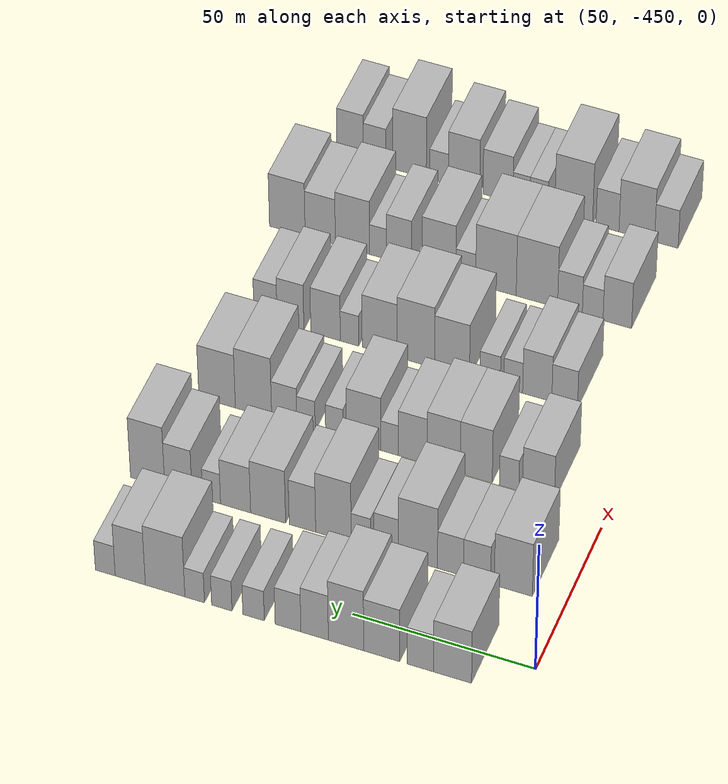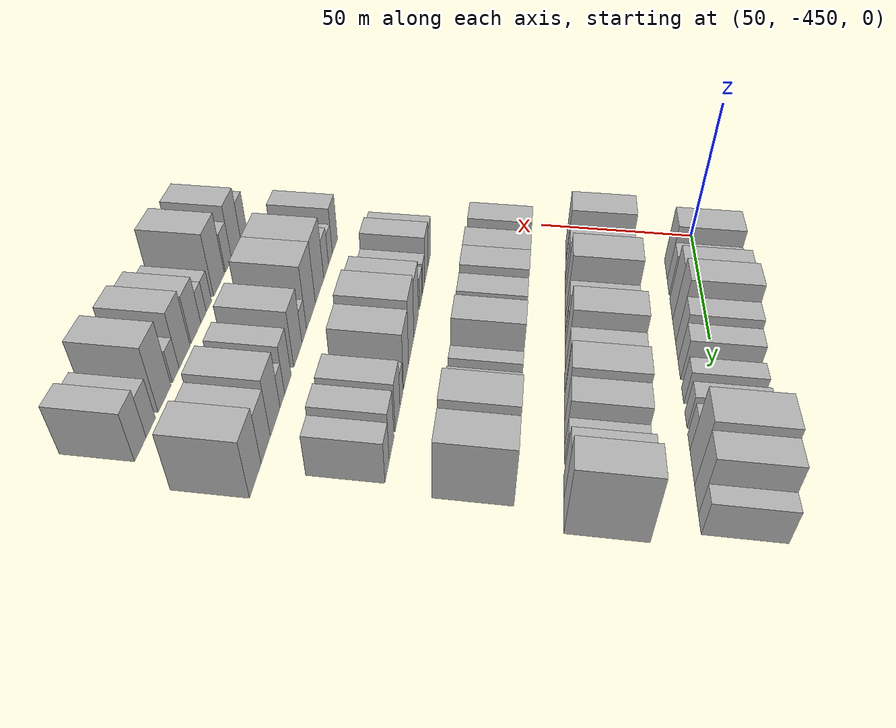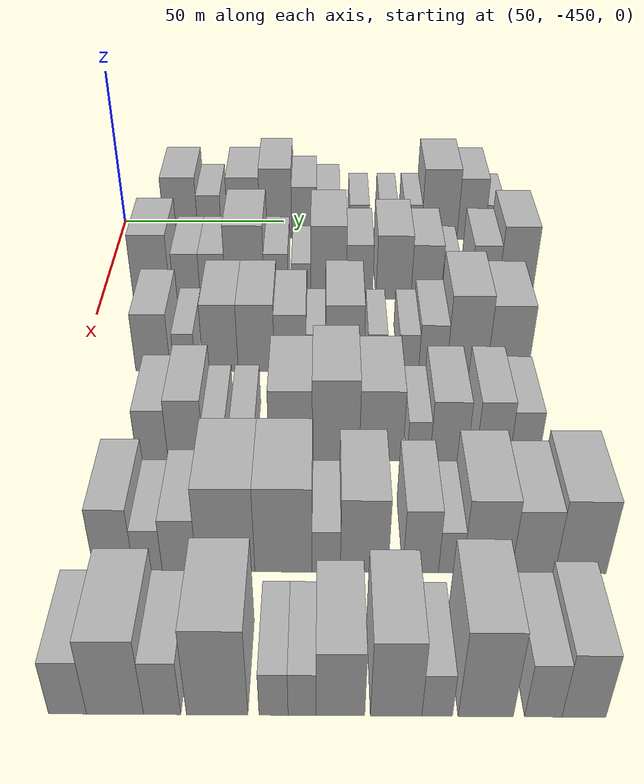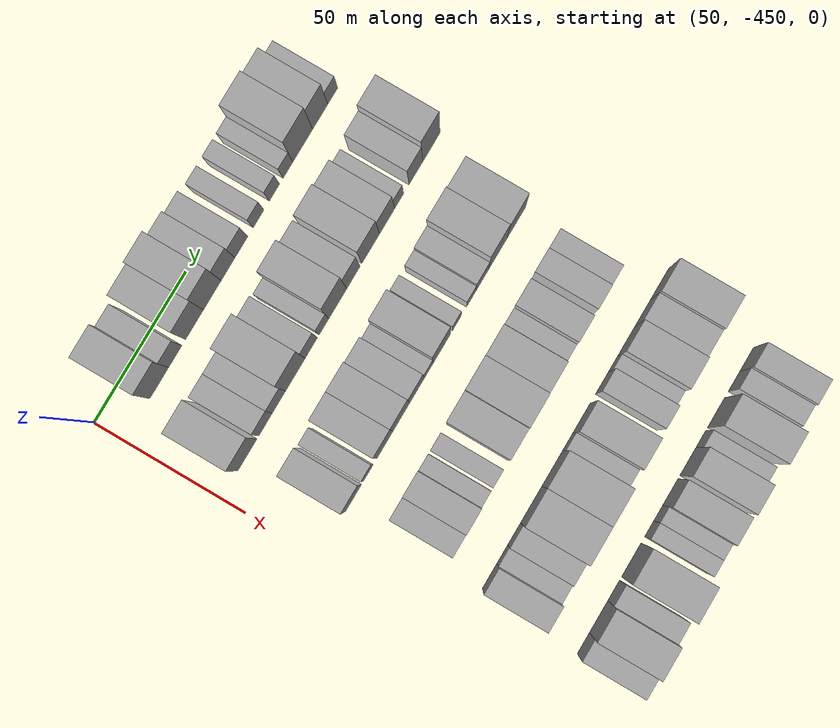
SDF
<sdf version="1.6">
 <world name="default">
  <model name="building_15">
   <static>1</static>
   <pose>50.0000 -431.0234 0 0.000000 0.000000 0.000000</pose>
   <link name="link">
    <pose>0 0 10.50 0 0 0</pose>
    <collision name="collision"><geometry><box><size>20.0000 10.3044 21.0000</size></box></geometry></collision>
    <visual name="visual">
     <cast_shadows>0</cast_shadows>
     <geometry><box><size>20.0000 10.3044 21.0000</size></box></geometry>
     <material>
      <script>
       <uri>model://HANNAS_wall/materials/scripts</uri>
       <uri>model://HANNAS_wall/materials/textures</uri>
       <name>vrc/HANNAS_wall</name>
      </script>
     </material>
    </visual>
   </link>
  </model>
  <model name="building_16">
   <static>1</static>
   <pose>50.0000 -422.2763 0 0.000000 0.000000 0.000000</pose>
   <link name="link">
    <pose>0 0 7.50 0 0 0</pose>
    <collision name="collision"><geometry><box><size>20.0000 7.1896 15.0000</size></box></geometry></collision>
    <visual name="visual">
     <cast_shadows>0</cast_shadows>
     <geometry><box><size>20.0000 7.1896 15.0000</size></box></geometry>
     <material>
      <script>
       <uri>model://HANNAS_wall/materials/scripts</uri>
       <uri>model://HANNAS_wall/materials/textures</uri>
       <name>vrc/HANNAS_wall</name>
      </script>
     </material>
    </visual>
   </link>
  </model>
  <model name="building_17">
   <static>1</static>
   <pose>50.0000 -411.7645 0 0.000000 0.000000 0.000000</pose>
   <link name="link">
    <pose>0 0 10.50 0 0 0</pose>
    <collision name="collision"><geometry><box><size>20.0000 9.8341 21.0000</size></box></geometry></collision>
    <visual name="visual">
     <cast_shadows>0</cast_shadows>
     <geometry><box><size>20.0000 9.8341 21.0000</size></box></geometry>
     <material>
      <script>
       <uri>model://HANNAS_wall/materials/scripts</uri>
       <uri>model://HANNAS_wall/materials/textures</uri>
       <name>vrc/HANNAS_wall</name>
      </script>
     </material>
    </visual>
   </link>
  </model>
  <model name="building_18">
   <static>1</static>
   <pose>50.0000 -401.9997 0 0.000000 0.000000 0.000000</pose>
   <link name="link">
    <pose>0 0 12.00 0 0 0</pose>
    <collision name="collision"><geometry><box><size>20.0000 9.6955 24.0000</size></box></geometry></collision>
    <visual name="visual">
     <cast_shadows>0</cast_shadows>
     <geometry><box><size>20.0000 9.6955 24.0000</size></box></geometry>
     <material>
      <script>
       <uri>model://HANNAS_wall/materials/scripts</uri>
       <uri>model://HANNAS_wall/materials/textures</uri>
       <name>vrc/HANNAS_wall</name>
      </script>
     </material>
    </visual>
   </link>
  </model>
  <model name="building_19">
   <static>1</static>
   <pose>50.0000 -393.3858 0 0.000000 0.000000 0.000000</pose>
   <link name="link">
    <pose>0 0 9.00 0 0 0</pose>
    <collision name="collision"><geometry><box><size>20.0000 7.5322 18.0000</size></box></geometry></collision>
    <visual name="visual">
     <cast_shadows>0</cast_shadows>
     <geometry><box><size>20.0000 7.5322 18.0000</size></box></geometry>
     <material>
      <script>
       <uri>model://HANNAS_wall/materials/scripts</uri>
       <uri>model://HANNAS_wall/materials/textures</uri>
       <name>vrc/HANNAS_wall</name>
      </script>
     </material>
    </visual>
   </link>
  </model>
  <model name="building_20">
   <static>1</static>
   <pose>50.0000 -386.0687 0 0.000000 0.000000 0.000000</pose>
   <link name="link">
    <pose>0 0 7.50 0 0 0</pose>
    <collision name="collision"><geometry><box><size>20.0000 7.1021 15.0000</size></box></geometry></collision>
    <visual name="visual">
     <cast_shadows>0</cast_shadows>
     <geometry><box><size>20.0000 7.1021 15.0000</size></box></geometry>
     <material>
      <script>
       <uri>model://HANNAS_wall/materials/scripts</uri>
       <uri>model://HANNAS_wall/materials/textures</uri>
       <name>vrc/HANNAS_wall</name>
      </script>
     </material>
    </visual>
   </link>
  </model>
  <model name="building_21">
   <static>1</static>
   <pose>50.0000 -376.5502 0 0.000000 0.000000 0.000000</pose>
   <link name="link">
    <pose>0 0 6.00 0 0 0</pose>
    <collision name="collision"><geometry><box><size>20.0000 5.9349 12.0000</size></box></geometry></collision>
    <visual name="visual">
     <cast_shadows>0</cast_shadows>
     <geometry><box><size>20.0000 5.9349 12.0000</size></box></geometry>
     <material>
      <script>
       <uri>model://HANNAS_wall/materials/scripts</uri>
       <uri>model://HANNAS_wall/materials/textures</uri>
       <name>vrc/HANNAS_wall</name>
      </script>
     </material>
    </visual>
   </link>
  </model>
  <model name="building_22">
   <static>1</static>
   <pose>50.0000 -367.7630 0 0.000000 0.000000 0.000000</pose>
   <link name="link">
    <pose>0 0 6.00 0 0 0</pose>
    <collision name="collision"><geometry><box><size>20.0000 5.6394 12.0000</size></box></geometry></collision>
    <visual name="visual">
     <cast_shadows>0</cast_shadows>
     <geometry><box><size>20.0000 5.6394 12.0000</size></box></geometry>
     <material>
      <script>
       <uri>model://HANNAS_wall/materials/scripts</uri>
       <uri>model://HANNAS_wall/materials/textures</uri>
       <name>vrc/HANNAS_wall</name>
      </script>
     </material>
    </visual>
   </link>
  </model>
  <model name="building_23">
   <static>1</static>
   <pose>50.0000 -360.2245 0 0.000000 0.000000 0.000000</pose>
   <link name="link">
    <pose>0 0 6.00 0 0 0</pose>
    <collision name="collision"><geometry><box><size>20.0000 5.4376 12.0000</size></box></geometry></collision>
    <visual name="visual">
     <cast_shadows>0</cast_shadows>
     <geometry><box><size>20.0000 5.4376 12.0000</size></box></geometry>
     <material>
      <script>
       <uri>model://HANNAS_wall/materials/scripts</uri>
       <uri>model://HANNAS_wall/materials/textures</uri>
       <name>vrc/HANNAS_wall</name>
      </script>
     </material>
    </visual>
   </link>
  </model>
  <model name="building_24">
   <static>1</static>
   <pose>50.0000 -352.0016 0 0.000000 0.000000 0.000000</pose>
   <link name="link">
    <pose>0 0 12.00 0 0 0</pose>
    <collision name="collision"><geometry><box><size>20.0000 11.0083 24.0000</size></box></geometry></collision>
    <visual name="visual">
     <cast_shadows>0</cast_shadows>
     <geometry><box><size>20.0000 11.0083 24.0000</size></box></geometry>
     <material>
      <script>
       <uri>model://HANNAS_wall/materials/scripts</uri>
       <uri>model://HANNAS_wall/materials/textures</uri>
       <name>vrc/HANNAS_wall</name>
      </script>
     </material>
    </visual>
   </link>
  </model>
  <model name="building_25">
   <static>1</static>
   <pose>50.0000 -342.2890 0 0.000000 0.000000 0.000000</pose>
   <link name="link">
    <pose>0 0 10.50 0 0 0</pose>
    <collision name="collision"><geometry><box><size>20.0000 8.4170 21.0000</size></box></geometry></collision>
    <visual name="visual">
     <cast_shadows>0</cast_shadows>
     <geometry><box><size>20.0000 8.4170 21.0000</size></box></geometry>
     <material>
      <script>
       <uri>model://HANNAS_wall/materials/scripts</uri>
       <uri>model://HANNAS_wall/materials/textures</uri>
       <name>vrc/HANNAS_wall</name>
      </script>
     </material>
    </visual>
   </link>
  </model>
  <model name="building_26">
   <static>1</static>
   <pose>50.0000 -335.2991 0 0.000000 0.000000 0.000000</pose>
   <link name="link">
    <pose>0 0 6.00 0 0 0</pose>
    <collision name="collision"><geometry><box><size>20.0000 5.5628 12.0000</size></box></geometry></collision>
    <visual name="visual">
     <cast_shadows>0</cast_shadows>
     <geometry><box><size>20.0000 5.5628 12.0000</size></box></geometry>
     <material>
      <script>
       <uri>model://HANNAS_wall/materials/scripts</uri>
       <uri>model://HANNAS_wall/materials/textures</uri>
       <name>vrc/HANNAS_wall</name>
      </script>
     </material>
    </visual>
   </link>
  </model>
  <model name="building_124">
   <static>1</static>
   <pose>82.0000 -435.7171 0 0.000000 0.000000 0.000000</pose>
   <link name="link">
    <pose>0 0 10.50 0 0 0</pose>
    <collision name="collision"><geometry><box><size>20.0000 10.4403 21.0000</size></box></geometry></collision>
    <visual name="visual">
     <cast_shadows>0</cast_shadows>
     <geometry><box><size>20.0000 10.4403 21.0000</size></box></geometry>
     <material>
      <script>
       <uri>model://HANNAS_wall/materials/scripts</uri>
       <uri>model://HANNAS_wall/materials/textures</uri>
       <name>vrc/HANNAS_wall</name>
      </script>
     </material>
    </visual>
   </link>
  </model>
  <model name="building_125">
   <static>1</static>
   <pose>82.0000 -425.7725 0 0.000000 0.000000 0.000000</pose>
   <link name="link">
    <pose>0 0 7.50 0 0 0</pose>
    <collision name="collision"><geometry><box><size>20.0000 7.4490 15.0000</size></box></geometry></collision>
    <visual name="visual">
     <cast_shadows>0</cast_shadows>
     <geometry><box><size>20.0000 7.4490 15.0000</size></box></geometry>
     <material>
      <script>
       <uri>model://HANNAS_wall/materials/scripts</uri>
       <uri>model://HANNAS_wall/materials/textures</uri>
       <name>vrc/HANNAS_wall</name>
      </script>
     </material>
    </visual>
   </link>
  </model>
  <model name="building_126">
   <static>1</static>
   <pose>82.0000 -418.4487 0 0.000000 0.000000 0.000000</pose>
   <link name="link">
    <pose>0 0 7.50 0 0 0</pose>
    <collision name="collision"><geometry><box><size>20.0000 7.1985 15.0000</size></box></geometry></collision>
    <visual name="visual">
     <cast_shadows>0</cast_shadows>
     <geometry><box><size>20.0000 7.1985 15.0000</size></box></geometry>
     <material>
      <script>
       <uri>model://HANNAS_wall/materials/scripts</uri>
       <uri>model://HANNAS_wall/materials/textures</uri>
       <name>vrc/HANNAS_wall</name>
      </script>
     </material>
    </visual>
   </link>
  </model>
  <model name="building_127">
   <static>1</static>
   <pose>82.0000 -409.4399 0 0.000000 0.000000 0.000000</pose>
   <link name="link">
    <pose>0 0 12.00 0 0 0</pose>
    <collision name="collision"><geometry><box><size>20.0000 10.8192 24.0000</size></box></geometry></collision>
    <visual name="visual">
     <cast_shadows>0</cast_shadows>
     <geometry><box><size>20.0000 10.8192 24.0000</size></box></geometry>
     <material>
      <script>
       <uri>model://HANNAS_wall/materials/scripts</uri>
       <uri>model://HANNAS_wall/materials/textures</uri>
       <name>vrc/HANNAS_wall</name>
      </script>
     </material>
    </visual>
   </link>
  </model>
  <model name="building_128">
   <static>1</static>
   <pose>82.0000 -400.6678 0 0.000000 0.000000 0.000000</pose>
   <link name="link">
    <pose>0 0 7.50 0 0 0</pose>
    <collision name="collision"><geometry><box><size>20.0000 6.7251 15.0000</size></box></geometry></collision>
    <visual name="visual">
     <cast_shadows>0</cast_shadows>
     <geometry><box><size>20.0000 6.7251 15.0000</size></box></geometry>
     <material>
      <script>
       <uri>model://HANNAS_wall/materials/scripts</uri>
       <uri>model://HANNAS_wall/materials/textures</uri>
       <name>vrc/HANNAS_wall</name>
      </script>
     </material>
    </visual>
   </link>
  </model>
  <model name="building_129">
   <static>1</static>
   <pose>82.0000 -393.6276 0 0.000000 0.000000 0.000000</pose>
   <link name="link">
    <pose>0 0 6.00 0 0 0</pose>
    <collision name="collision"><geometry><box><size>20.0000 5.3552 12.0000</size></box></geometry></collision>
    <visual name="visual">
     <cast_shadows>0</cast_shadows>
     <geometry><box><size>20.0000 5.3552 12.0000</size></box></geometry>
     <material>
      <script>
       <uri>model://HANNAS_wall/materials/scripts</uri>
       <uri>model://HANNAS_wall/materials/textures</uri>
       <name>vrc/HANNAS_wall</name>
      </script>
     </material>
    </visual>
   </link>
  </model>
  <model name="building_130">
   <static>1</static>
   <pose>82.0000 -385.9946 0 0.000000 0.000000 0.000000</pose>
   <link name="link">
    <pose>0 0 12.00 0 0 0</pose>
    <collision name="collision"><geometry><box><size>20.0000 9.9109 24.0000</size></box></geometry></collision>
    <visual name="visual">
     <cast_shadows>0</cast_shadows>
     <geometry><box><size>20.0000 9.9109 24.0000</size></box></geometry>
     <material>
      <script>
       <uri>model://HANNAS_wall/materials/scripts</uri>
       <uri>model://HANNAS_wall/materials/textures</uri>
       <name>vrc/HANNAS_wall</name>
      </script>
     </material>
    </visual>
   </link>
  </model>
  <model name="building_131">
   <static>1</static>
   <pose>82.0000 -377.3391 0 0.000000 0.000000 0.000000</pose>
   <link name="link">
    <pose>0 0 9.00 0 0 0</pose>
    <collision name="collision"><geometry><box><size>20.0000 7.4000 18.0000</size></box></geometry></collision>
    <visual name="visual">
     <cast_shadows>0</cast_shadows>
     <geometry><box><size>20.0000 7.4000 18.0000</size></box></geometry>
     <material>
      <script>
       <uri>model://HANNAS_wall/materials/scripts</uri>
       <uri>model://HANNAS_wall/materials/textures</uri>
       <name>vrc/HANNAS_wall</name>
      </script>
     </material>
    </visual>
   </link>
  </model>
  <model name="building_132">
   <static>1</static>
   <pose>82.0000 -367.7302 0 0.000000 0.000000 0.000000</pose>
   <link name="link">
    <pose>0 0 10.50 0 0 0</pose>
    <collision name="collision"><geometry><box><size>20.0000 9.8177 21.0000</size></box></geometry></collision>
    <visual name="visual">
     <cast_shadows>0</cast_shadows>
     <geometry><box><size>20.0000 9.8177 21.0000</size></box></geometry>
     <material>
      <script>
       <uri>model://HANNAS_wall/materials/scripts</uri>
       <uri>model://HANNAS_wall/materials/textures</uri>
       <name>vrc/HANNAS_wall</name>
      </script>
     </material>
    </visual>
   </link>
  </model>
  <model name="building_133">
   <static>1</static>
   <pose>82.0000 -358.5828 0 0.000000 0.000000 0.000000</pose>
   <link name="link">
    <pose>0 0 9.00 0 0 0</pose>
    <collision name="collision"><geometry><box><size>20.0000 8.4772 18.0000</size></box></geometry></collision>
    <visual name="visual">
     <cast_shadows>0</cast_shadows>
     <geometry><box><size>20.0000 8.4772 18.0000</size></box></geometry>
     <material>
      <script>
       <uri>model://HANNAS_wall/materials/scripts</uri>
       <uri>model://HANNAS_wall/materials/textures</uri>
       <name>vrc/HANNAS_wall</name>
      </script>
     </material>
    </visual>
   </link>
  </model>
  <model name="building_134">
   <static>1</static>
   <pose>82.0000 -351.8212 0 0.000000 0.000000 0.000000</pose>
   <link name="link">
    <pose>0 0 6.00 0 0 0</pose>
    <collision name="collision"><geometry><box><size>20.0000 5.0460 12.0000</size></box></geometry></collision>
    <visual name="visual">
     <cast_shadows>0</cast_shadows>
     <geometry><box><size>20.0000 5.0460 12.0000</size></box></geometry>
     <material>
      <script>
       <uri>model://HANNAS_wall/materials/scripts</uri>
       <uri>model://HANNAS_wall/materials/textures</uri>
       <name>vrc/HANNAS_wall</name>
      </script>
     </material>
    </visual>
   </link>
  </model>
  <model name="building_135">
   <static>1</static>
   <pose>82.0000 -342.4400 0 0.000000 0.000000 0.000000</pose>
   <link name="link">
    <pose>0 0 9.00 0 0 0</pose>
    <collision name="collision"><geometry><box><size>20.0000 7.7163 18.0000</size></box></geometry></collision>
    <visual name="visual">
     <cast_shadows>0</cast_shadows>
     <geometry><box><size>20.0000 7.7163 18.0000</size></box></geometry>
     <material>
      <script>
       <uri>model://HANNAS_wall/materials/scripts</uri>
       <uri>model://HANNAS_wall/materials/textures</uri>
       <name>vrc/HANNAS_wall</name>
      </script>
     </material>
    </visual>
   </link>
  </model>
  <model name="building_136">
   <static>1</static>
   <pose>82.0000 -333.7368 0 0.000000 0.000000 0.000000</pose>
   <link name="link">
    <pose>0 0 12.00 0 0 0</pose>
    <collision name="collision"><geometry><box><size>20.0000 9.6902 24.0000</size></box></geometry></collision>
    <visual name="visual">
     <cast_shadows>0</cast_shadows>
     <geometry><box><size>20.0000 9.6902 24.0000</size></box></geometry>
     <material>
      <script>
       <uri>model://HANNAS_wall/materials/scripts</uri>
       <uri>model://HANNAS_wall/materials/textures</uri>
       <name>vrc/HANNAS_wall</name>
      </script>
     </material>
    </visual>
   </link>
  </model>
  <model name="building_251">
   <static>1</static>
   <pose>114.0000 -430.9544 0 0.000000 0.000000 0.000000</pose>
   <link name="link">
    <pose>0 0 9.00 0 0 0</pose>
    <collision name="collision"><geometry><box><size>20.0000 8.8700 18.0000</size></box></geometry></collision>
    <visual name="visual">
     <cast_shadows>0</cast_shadows>
     <geometry><box><size>20.0000 8.8700 18.0000</size></box></geometry>
     <material>
      <script>
       <uri>model://HANNAS_wall/materials/scripts</uri>
       <uri>model://HANNAS_wall/materials/textures</uri>
       <name>vrc/HANNAS_wall</name>
      </script>
     </material>
    </visual>
   </link>
  </model>
  <model name="building_252">
   <static>1</static>
   <pose>114.0000 -422.8022 0 0.000000 0.000000 0.000000</pose>
   <link name="link">
    <pose>0 0 6.00 0 0 0</pose>
    <collision name="collision"><geometry><box><size>20.0000 5.4343 12.0000</size></box></geometry></collision>
    <visual name="visual">
     <cast_shadows>0</cast_shadows>
     <geometry><box><size>20.0000 5.4343 12.0000</size></box></geometry>
     <material>
      <script>
       <uri>model://HANNAS_wall/materials/scripts</uri>
       <uri>model://HANNAS_wall/materials/textures</uri>
       <name>vrc/HANNAS_wall</name>
      </script>
     </material>
    </visual>
   </link>
  </model>
  <model name="building_253">
   <static>1</static>
   <pose>114.0000 -413.6154 0 0.000000 0.000000 0.000000</pose>
   <link name="link">
    <pose>0 0 10.50 0 0 0</pose>
    <collision name="collision"><geometry><box><size>20.0000 8.9394 21.0000</size></box></geometry></collision>
    <visual name="visual">
     <cast_shadows>0</cast_shadows>
     <geometry><box><size>20.0000 8.9394 21.0000</size></box></geometry>
     <material>
      <script>
       <uri>model://HANNAS_wall/materials/scripts</uri>
       <uri>model://HANNAS_wall/materials/textures</uri>
       <name>vrc/HANNAS_wall</name>
      </script>
     </material>
    </visual>
   </link>
  </model>
  <model name="building_254">
   <static>1</static>
   <pose>114.0000 -404.5164 0 0.000000 0.000000 0.000000</pose>
   <link name="link">
    <pose>0 0 10.50 0 0 0</pose>
    <collision name="collision"><geometry><box><size>20.0000 9.2585 21.0000</size></box></geometry></collision>
    <visual name="visual">
     <cast_shadows>0</cast_shadows>
     <geometry><box><size>20.0000 9.2585 21.0000</size></box></geometry>
     <material>
      <script>
       <uri>model://HANNAS_wall/materials/scripts</uri>
       <uri>model://HANNAS_wall/materials/textures</uri>
       <name>vrc/HANNAS_wall</name>
      </script>
     </material>
    </visual>
   </link>
  </model>
  <model name="building_255">
   <static>1</static>
   <pose>114.0000 -395.8419 0 0.000000 0.000000 0.000000</pose>
   <link name="link">
    <pose>0 0 9.00 0 0 0</pose>
    <collision name="collision"><geometry><box><size>20.0000 8.0905 18.0000</size></box></geometry></collision>
    <visual name="visual">
     <cast_shadows>0</cast_shadows>
     <geometry><box><size>20.0000 8.0905 18.0000</size></box></geometry>
     <material>
      <script>
       <uri>model://HANNAS_wall/materials/scripts</uri>
       <uri>model://HANNAS_wall/materials/textures</uri>
       <name>vrc/HANNAS_wall</name>
      </script>
     </material>
    </visual>
   </link>
  </model>
  <model name="building_256">
   <static>1</static>
   <pose>114.0000 -389.3204 0 0.000000 0.000000 0.000000</pose>
   <link name="link">
    <pose>0 0 6.00 0 0 0</pose>
    <collision name="collision"><geometry><box><size>20.0000 4.9526 12.0000</size></box></geometry></collision>
    <visual name="visual">
     <cast_shadows>0</cast_shadows>
     <geometry><box><size>20.0000 4.9526 12.0000</size></box></geometry>
     <material>
      <script>
       <uri>model://HANNAS_wall/materials/scripts</uri>
       <uri>model://HANNAS_wall/materials/textures</uri>
       <name>vrc/HANNAS_wall</name>
      </script>
     </material>
    </visual>
   </link>
  </model>
  <model name="building_257">
   <static>1</static>
   <pose>114.0000 -382.0037 0 0.000000 0.000000 0.000000</pose>
   <link name="link">
    <pose>0 0 10.50 0 0 0</pose>
    <collision name="collision"><geometry><box><size>20.0000 9.6807 21.0000</size></box></geometry></collision>
    <visual name="visual">
     <cast_shadows>0</cast_shadows>
     <geometry><box><size>20.0000 9.6807 21.0000</size></box></geometry>
     <material>
      <script>
       <uri>model://HANNAS_wall/materials/scripts</uri>
       <uri>model://HANNAS_wall/materials/textures</uri>
       <name>vrc/HANNAS_wall</name>
      </script>
     </material>
    </visual>
   </link>
  </model>
  <model name="building_258">
   <static>1</static>
   <pose>114.0000 -373.7059 0 0.000000 0.000000 0.000000</pose>
   <link name="link">
    <pose>0 0 6.00 0 0 0</pose>
    <collision name="collision"><geometry><box><size>20.0000 4.9148 12.0000</size></box></geometry></collision>
    <visual name="visual">
     <cast_shadows>0</cast_shadows>
     <geometry><box><size>20.0000 4.9148 12.0000</size></box></geometry>
     <material>
      <script>
       <uri>model://HANNAS_wall/materials/scripts</uri>
       <uri>model://HANNAS_wall/materials/textures</uri>
       <name>vrc/HANNAS_wall</name>
      </script>
     </material>
    </visual>
   </link>
  </model>
  <model name="building_259">
   <static>1</static>
   <pose>114.0000 -365.6502 0 0.000000 0.000000 0.000000</pose>
   <link name="link">
    <pose>0 0 6.00 0 0 0</pose>
    <collision name="collision"><geometry><box><size>20.0000 5.1966 12.0000</size></box></geometry></collision>
    <visual name="visual">
     <cast_shadows>0</cast_shadows>
     <geometry><box><size>20.0000 5.1966 12.0000</size></box></geometry>
     <material>
      <script>
       <uri>model://HANNAS_wall/materials/scripts</uri>
       <uri>model://HANNAS_wall/materials/textures</uri>
       <name>vrc/HANNAS_wall</name>
      </script>
     </material>
    </visual>
   </link>
  </model>
  <model name="building_260">
   <static>1</static>
   <pose>114.0000 -359.4777 0 0.000000 0.000000 0.000000</pose>
   <link name="link">
    <pose>0 0 7.50 0 0 0</pose>
    <collision name="collision"><geometry><box><size>20.0000 7.1486 15.0000</size></box></geometry></collision>
    <visual name="visual">
     <cast_shadows>0</cast_shadows>
     <geometry><box><size>20.0000 7.1486 15.0000</size></box></geometry>
     <material>
      <script>
       <uri>model://HANNAS_wall/materials/scripts</uri>
       <uri>model://HANNAS_wall/materials/textures</uri>
       <name>vrc/HANNAS_wall</name>
      </script>
     </material>
    </visual>
   </link>
  </model>
  <model name="building_261">
   <static>1</static>
   <pose>114.0000 -350.7200 0 0.000000 0.000000 0.000000</pose>
   <link name="link">
    <pose>0 0 12.00 0 0 0</pose>
    <collision name="collision"><geometry><box><size>20.0000 10.3667 24.0000</size></box></geometry></collision>
    <visual name="visual">
     <cast_shadows>0</cast_shadows>
     <geometry><box><size>20.0000 10.3667 24.0000</size></box></geometry>
     <material>
      <script>
       <uri>model://HANNAS_wall/materials/scripts</uri>
       <uri>model://HANNAS_wall/materials/textures</uri>
       <name>vrc/HANNAS_wall</name>
      </script>
     </material>
    </visual>
   </link>
  </model>
  <model name="building_262">
   <static>1</static>
   <pose>114.0000 -340.3106 0 0.000000 0.000000 0.000000</pose>
   <link name="link">
    <pose>0 0 10.50 0 0 0</pose>
    <collision name="collision"><geometry><box><size>20.0000 10.4520 21.0000</size></box></geometry></collision>
    <visual name="visual">
     <cast_shadows>0</cast_shadows>
     <geometry><box><size>20.0000 10.4520 21.0000</size></box></geometry>
     <material>
      <script>
       <uri>model://HANNAS_wall/materials/scripts</uri>
       <uri>model://HANNAS_wall/materials/textures</uri>
       <name>vrc/HANNAS_wall</name>
      </script>
     </material>
    </visual>
   </link>
  </model>
  <model name="building_372">
   <static>1</static>
   <pose>146.0000 -426.7146 0 0.000000 0.000000 0.000000</pose>
   <link name="link">
    <pose>0 0 7.50 0 0 0</pose>
    <collision name="collision"><geometry><box><size>20.0000 7.2347 15.0000</size></box></geometry></collision>
    <visual name="visual">
     <cast_shadows>0</cast_shadows>
     <geometry><box><size>20.0000 7.2347 15.0000</size></box></geometry>
     <material>
      <script>
       <uri>model://HANNAS_wall/materials/scripts</uri>
       <uri>model://HANNAS_wall/materials/textures</uri>
       <name>vrc/HANNAS_wall</name>
      </script>
     </material>
    </visual>
   </link>
  </model>
  <model name="building_373">
   <static>1</static>
   <pose>146.0000 -418.9772 0 0.000000 0.000000 0.000000</pose>
   <link name="link">
    <pose>0 0 9.00 0 0 0</pose>
    <collision name="collision"><geometry><box><size>20.0000 8.2400 18.0000</size></box></geometry></collision>
    <visual name="visual">
     <cast_shadows>0</cast_shadows>
     <geometry><box><size>20.0000 8.2400 18.0000</size></box></geometry>
     <material>
      <script>
       <uri>model://HANNAS_wall/materials/scripts</uri>
       <uri>model://HANNAS_wall/materials/textures</uri>
       <name>vrc/HANNAS_wall</name>
      </script>
     </material>
    </visual>
   </link>
  </model>
  <model name="building_374">
   <static>1</static>
   <pose>146.0000 -412.1987 0 0.000000 0.000000 0.000000</pose>
   <link name="link">
    <pose>0 0 6.00 0 0 0</pose>
    <collision name="collision"><geometry><box><size>20.0000 5.3171 12.0000</size></box></geometry></collision>
    <visual name="visual">
     <cast_shadows>0</cast_shadows>
     <geometry><box><size>20.0000 5.3171 12.0000</size></box></geometry>
     <material>
      <script>
       <uri>model://HANNAS_wall/materials/scripts</uri>
       <uri>model://HANNAS_wall/materials/textures</uri>
       <name>vrc/HANNAS_wall</name>
      </script>
     </material>
    </visual>
   </link>
  </model>
  <model name="building_375">
   <static>1</static>
   <pose>146.0000 -405.6668 0 0.000000 0.000000 0.000000</pose>
   <link name="link">
    <pose>0 0 6.00 0 0 0</pose>
    <collision name="collision"><geometry><box><size>20.0000 5.7467 12.0000</size></box></geometry></collision>
    <visual name="visual">
     <cast_shadows>0</cast_shadows>
     <geometry><box><size>20.0000 5.7467 12.0000</size></box></geometry>
     <material>
      <script>
       <uri>model://HANNAS_wall/materials/scripts</uri>
       <uri>model://HANNAS_wall/materials/textures</uri>
       <name>vrc/HANNAS_wall</name>
      </script>
     </material>
    </visual>
   </link>
  </model>
  <model name="building_376">
   <static>1</static>
   <pose>146.0000 -394.8398 0 0.000000 0.000000 0.000000</pose>
   <link name="link">
    <pose>0 0 10.50 0 0 0</pose>
    <collision name="collision"><geometry><box><size>20.0000 9.9075 21.0000</size></box></geometry></collision>
    <visual name="visual">
     <cast_shadows>0</cast_shadows>
     <geometry><box><size>20.0000 9.9075 21.0000</size></box></geometry>
     <material>
      <script>
       <uri>model://HANNAS_wall/materials/scripts</uri>
       <uri>model://HANNAS_wall/materials/textures</uri>
       <name>vrc/HANNAS_wall</name>
      </script>
     </material>
    </visual>
   </link>
  </model>
  <model name="building_377">
   <static>1</static>
   <pose>146.0000 -384.5113 0 0.000000 0.000000 0.000000</pose>
   <link name="link">
    <pose>0 0 12.00 0 0 0</pose>
    <collision name="collision"><geometry><box><size>20.0000 10.7495 24.0000</size></box></geometry></collision>
    <visual name="visual">
     <cast_shadows>0</cast_shadows>
     <geometry><box><size>20.0000 10.7495 24.0000</size></box></geometry>
     <material>
      <script>
       <uri>model://HANNAS_wall/materials/scripts</uri>
       <uri>model://HANNAS_wall/materials/textures</uri>
       <name>vrc/HANNAS_wall</name>
      </script>
     </material>
    </visual>
   </link>
  </model>
  <model name="building_378">
   <static>1</static>
   <pose>146.0000 -374.1393 0 0.000000 0.000000 0.000000</pose>
   <link name="link">
    <pose>0 0 10.50 0 0 0</pose>
    <collision name="collision"><geometry><box><size>20.0000 9.9944 21.0000</size></box></geometry></collision>
    <visual name="visual">
     <cast_shadows>0</cast_shadows>
     <geometry><box><size>20.0000 9.9944 21.0000</size></box></geometry>
     <material>
      <script>
       <uri>model://HANNAS_wall/materials/scripts</uri>
       <uri>model://HANNAS_wall/materials/textures</uri>
       <name>vrc/HANNAS_wall</name>
      </script>
     </material>
    </visual>
   </link>
  </model>
  <model name="building_379">
   <static>1</static>
   <pose>146.0000 -365.5115 0 0.000000 0.000000 0.000000</pose>
   <link name="link">
    <pose>0 0 6.00 0 0 0</pose>
    <collision name="collision"><geometry><box><size>20.0000 5.2613 12.0000</size></box></geometry></collision>
    <visual name="visual">
     <cast_shadows>0</cast_shadows>
     <geometry><box><size>20.0000 5.2613 12.0000</size></box></geometry>
     <material>
      <script>
       <uri>model://HANNAS_wall/materials/scripts</uri>
       <uri>model://HANNAS_wall/materials/textures</uri>
       <name>vrc/HANNAS_wall</name>
      </script>
     </material>
    </visual>
   </link>
  </model>
  <model name="building_380">
   <static>1</static>
   <pose>146.0000 -358.6246 0 0.000000 0.000000 0.000000</pose>
   <link name="link">
    <pose>0 0 9.00 0 0 0</pose>
    <collision name="collision"><geometry><box><size>20.0000 8.5125 18.0000</size></box></geometry></collision>
    <visual name="visual">
     <cast_shadows>0</cast_shadows>
     <geometry><box><size>20.0000 8.5125 18.0000</size></box></geometry>
     <material>
      <script>
       <uri>model://HANNAS_wall/materials/scripts</uri>
       <uri>model://HANNAS_wall/materials/textures</uri>
       <name>vrc/HANNAS_wall</name>
      </script>
     </material>
    </visual>
   </link>
  </model>
  <model name="building_381">
   <static>1</static>
   <pose>146.0000 -348.5094 0 0.000000 0.000000 0.000000</pose>
   <link name="link">
    <pose>0 0 9.00 0 0 0</pose>
    <collision name="collision"><geometry><box><size>20.0000 7.7178 18.0000</size></box></geometry></collision>
    <visual name="visual">
     <cast_shadows>0</cast_shadows>
     <geometry><box><size>20.0000 7.7178 18.0000</size></box></geometry>
     <material>
      <script>
       <uri>model://HANNAS_wall/materials/scripts</uri>
       <uri>model://HANNAS_wall/materials/textures</uri>
       <name>vrc/HANNAS_wall</name>
      </script>
     </material>
    </visual>
   </link>
  </model>
  <model name="building_382">
   <static>1</static>
   <pose>146.0000 -341.2983 0 0.000000 0.000000 0.000000</pose>
   <link name="link">
    <pose>0 0 7.50 0 0 0</pose>
    <collision name="collision"><geometry><box><size>20.0000 6.7044 15.0000</size></box></geometry></collision>
    <visual name="visual">
     <cast_shadows>0</cast_shadows>
     <geometry><box><size>20.0000 6.7044 15.0000</size></box></geometry>
     <material>
      <script>
       <uri>model://HANNAS_wall/materials/scripts</uri>
       <uri>model://HANNAS_wall/materials/textures</uri>
       <name>vrc/HANNAS_wall</name>
      </script>
     </material>
    </visual>
   </link>
  </model>
  <model name="building_496">
   <static>1</static>
   <pose>178.0000 -430.2176 0 0.000000 0.000000 0.000000</pose>
   <link name="link">
    <pose>0 0 9.00 0 0 0</pose>
    <collision name="collision"><geometry><box><size>20.0000 8.1299 18.0000</size></box></geometry></collision>
    <visual name="visual">
     <cast_shadows>0</cast_shadows>
     <geometry><box><size>20.0000 8.1299 18.0000</size></box></geometry>
     <material>
      <script>
       <uri>model://HANNAS_wall/materials/scripts</uri>
       <uri>model://HANNAS_wall/materials/textures</uri>
       <name>vrc/HANNAS_wall</name>
      </script>
     </material>
    </visual>
   </link>
  </model>
  <model name="building_497">
   <static>1</static>
   <pose>178.0000 -423.1994 0 0.000000 0.000000 0.000000</pose>
   <link name="link">
    <pose>0 0 6.00 0 0 0</pose>
    <collision name="collision"><geometry><box><size>20.0000 5.9065 12.0000</size></box></geometry></collision>
    <visual name="visual">
     <cast_shadows>0</cast_shadows>
     <geometry><box><size>20.0000 5.9065 12.0000</size></box></geometry>
     <material>
      <script>
       <uri>model://HANNAS_wall/materials/scripts</uri>
       <uri>model://HANNAS_wall/materials/textures</uri>
       <name>vrc/HANNAS_wall</name>
      </script>
     </material>
    </visual>
   </link>
  </model>
  <model name="building_498">
   <static>1</static>
   <pose>178.0000 -416.7090 0 0.000000 0.000000 0.000000</pose>
   <link name="link">
    <pose>0 0 7.50 0 0 0</pose>
    <collision name="collision"><geometry><box><size>20.0000 7.0741 15.0000</size></box></geometry></collision>
    <visual name="visual">
     <cast_shadows>0</cast_shadows>
     <geometry><box><size>20.0000 7.0741 15.0000</size></box></geometry>
     <material>
      <script>
       <uri>model://HANNAS_wall/materials/scripts</uri>
       <uri>model://HANNAS_wall/materials/textures</uri>
       <name>vrc/HANNAS_wall</name>
      </script>
     </material>
    </visual>
   </link>
  </model>
  <model name="building_499">
   <static>1</static>
   <pose>178.0000 -407.2328 0 0.000000 0.000000 0.000000</pose>
   <link name="link">
    <pose>0 0 12.00 0 0 0</pose>
    <collision name="collision"><geometry><box><size>20.0000 11.8783 24.0000</size></box></geometry></collision>
    <visual name="visual">
     <cast_shadows>0</cast_shadows>
     <geometry><box><size>20.0000 11.8783 24.0000</size></box></geometry>
     <material>
      <script>
       <uri>model://HANNAS_wall/materials/scripts</uri>
       <uri>model://HANNAS_wall/materials/textures</uri>
       <name>vrc/HANNAS_wall</name>
      </script>
     </material>
    </visual>
   </link>
  </model>
  <model name="building_500">
   <static>1</static>
   <pose>178.0000 -395.4577 0 0.000000 0.000000 0.000000</pose>
   <link name="link">
    <pose>0 0 12.00 0 0 0</pose>
    <collision name="collision"><geometry><box><size>20.0000 11.6719 24.0000</size></box></geometry></collision>
    <visual name="visual">
     <cast_shadows>0</cast_shadows>
     <geometry><box><size>20.0000 11.6719 24.0000</size></box></geometry>
     <material>
      <script>
       <uri>model://HANNAS_wall/materials/scripts</uri>
       <uri>model://HANNAS_wall/materials/textures</uri>
       <name>vrc/HANNAS_wall</name>
      </script>
     </material>
    </visual>
   </link>
  </model>
  <model name="building_501">
   <static>1</static>
   <pose>178.0000 -386.7442 0 0.000000 0.000000 0.000000</pose>
   <link name="link">
    <pose>0 0 6.00 0 0 0</pose>
    <collision name="collision"><geometry><box><size>20.0000 5.7551 12.0000</size></box></geometry></collision>
    <visual name="visual">
     <cast_shadows>0</cast_shadows>
     <geometry><box><size>20.0000 5.7551 12.0000</size></box></geometry>
     <material>
      <script>
       <uri>model://HANNAS_wall/materials/scripts</uri>
       <uri>model://HANNAS_wall/materials/textures</uri>
       <name>vrc/HANNAS_wall</name>
      </script>
     </material>
    </visual>
   </link>
  </model>
  <model name="building_502">
   <static>1</static>
   <pose>178.0000 -378.9863 0 0.000000 0.000000 0.000000</pose>
   <link name="link">
    <pose>0 0 10.50 0 0 0</pose>
    <collision name="collision"><geometry><box><size>20.0000 9.7607 21.0000</size></box></geometry></collision>
    <visual name="visual">
     <cast_shadows>0</cast_shadows>
     <geometry><box><size>20.0000 9.7607 21.0000</size></box></geometry>
     <material>
      <script>
       <uri>model://HANNAS_wall/materials/scripts</uri>
       <uri>model://HANNAS_wall/materials/textures</uri>
       <name>vrc/HANNAS_wall</name>
      </script>
     </material>
    </visual>
   </link>
  </model>
  <model name="building_503">
   <static>1</static>
   <pose>178.0000 -367.4717 0 0.000000 0.000000 0.000000</pose>
   <link name="link">
    <pose>0 0 9.00 0 0 0</pose>
    <collision name="collision"><geometry><box><size>20.0000 7.2686 18.0000</size></box></geometry></collision>
    <visual name="visual">
     <cast_shadows>0</cast_shadows>
     <geometry><box><size>20.0000 7.2686 18.0000</size></box></geometry>
     <material>
      <script>
       <uri>model://HANNAS_wall/materials/scripts</uri>
       <uri>model://HANNAS_wall/materials/textures</uri>
       <name>vrc/HANNAS_wall</name>
      </script>
     </material>
    </visual>
   </link>
  </model>
  <model name="building_504">
   <static>1</static>
   <pose>178.0000 -361.3476 0 0.000000 0.000000 0.000000</pose>
   <link name="link">
    <pose>0 0 6.00 0 0 0</pose>
    <collision name="collision"><geometry><box><size>20.0000 4.9795 12.0000</size></box></geometry></collision>
    <visual name="visual">
     <cast_shadows>0</cast_shadows>
     <geometry><box><size>20.0000 4.9795 12.0000</size></box></geometry>
     <material>
      <script>
       <uri>model://HANNAS_wall/materials/scripts</uri>
       <uri>model://HANNAS_wall/materials/textures</uri>
       <name>vrc/HANNAS_wall</name>
      </script>
     </material>
    </visual>
   </link>
  </model>
  <model name="building_505">
   <static>1</static>
   <pose>178.0000 -353.8837 0 0.000000 0.000000 0.000000</pose>
   <link name="link">
    <pose>0 0 10.50 0 0 0</pose>
    <collision name="collision"><geometry><box><size>20.0000 9.9484 21.0000</size></box></geometry></collision>
    <visual name="visual">
     <cast_shadows>0</cast_shadows>
     <geometry><box><size>20.0000 9.9484 21.0000</size></box></geometry>
     <material>
      <script>
       <uri>model://HANNAS_wall/materials/scripts</uri>
       <uri>model://HANNAS_wall/materials/textures</uri>
       <name>vrc/HANNAS_wall</name>
      </script>
     </material>
    </visual>
   </link>
  </model>
  <model name="building_506">
   <static>1</static>
   <pose>178.0000 -344.4781 0 0.000000 0.000000 0.000000</pose>
   <link name="link">
    <pose>0 0 9.00 0 0 0</pose>
    <collision name="collision"><geometry><box><size>20.0000 8.8628 18.0000</size></box></geometry></collision>
    <visual name="visual">
     <cast_shadows>0</cast_shadows>
     <geometry><box><size>20.0000 8.8628 18.0000</size></box></geometry>
     <material>
      <script>
       <uri>model://HANNAS_wall/materials/scripts</uri>
       <uri>model://HANNAS_wall/materials/textures</uri>
       <name>vrc/HANNAS_wall</name>
      </script>
     </material>
    </visual>
   </link>
  </model>
  <model name="building_507">
   <static>1</static>
   <pose>178.0000 -334.8273 0 0.000000 0.000000 0.000000</pose>
   <link name="link">
    <pose>0 0 10.50 0 0 0</pose>
    <collision name="collision"><geometry><box><size>20.0000 10.4387 21.0000</size></box></geometry></collision>
    <visual name="visual">
     <cast_shadows>0</cast_shadows>
     <geometry><box><size>20.0000 10.4387 21.0000</size></box></geometry>
     <material>
      <script>
       <uri>model://HANNAS_wall/materials/scripts</uri>
       <uri>model://HANNAS_wall/materials/textures</uri>
       <name>vrc/HANNAS_wall</name>
      </script>
     </material>
    </visual>
   </link>
  </model>
  <model name="building_615">
   <static>1</static>
   <pose>210.0000 -433.0631 0 0.000000 0.000000 0.000000</pose>
   <link name="link">
    <pose>0 0 7.50 0 0 0</pose>
    <collision name="collision"><geometry><box><size>20.0000 6.8014 15.0000</size></box></geometry></collision>
    <visual name="visual">
     <cast_shadows>0</cast_shadows>
     <geometry><box><size>20.0000 6.8014 15.0000</size></box></geometry>
     <material>
      <script>
       <uri>model://HANNAS_wall/materials/scripts</uri>
       <uri>model://HANNAS_wall/materials/textures</uri>
       <name>vrc/HANNAS_wall</name>
      </script>
     </material>
    </visual>
   </link>
  </model>
  <model name="building_616">
   <static>1</static>
   <pose>210.0000 -424.5458 0 0.000000 0.000000 0.000000</pose>
   <link name="link">
    <pose>0 0 10.50 0 0 0</pose>
    <collision name="collision"><geometry><box><size>20.0000 10.2332 21.0000</size></box></geometry></collision>
    <visual name="visual">
     <cast_shadows>0</cast_shadows>
     <geometry><box><size>20.0000 10.2332 21.0000</size></box></geometry>
     <material>
      <script>
       <uri>model://HANNAS_wall/materials/scripts</uri>
       <uri>model://HANNAS_wall/materials/textures</uri>
       <name>vrc/HANNAS_wall</name>
      </script>
     </material>
    </visual>
   </link>
  </model>
  <model name="building_617">
   <static>1</static>
   <pose>210.0000 -416.0981 0 0.000000 0.000000 0.000000</pose>
   <link name="link">
    <pose>0 0 7.50 0 0 0</pose>
    <collision name="collision"><geometry><box><size>20.0000 6.6624 15.0000</size></box></geometry></collision>
    <visual name="visual">
     <cast_shadows>0</cast_shadows>
     <geometry><box><size>20.0000 6.6624 15.0000</size></box></geometry>
     <material>
      <script>
       <uri>model://HANNAS_wall/materials/scripts</uri>
       <uri>model://HANNAS_wall/materials/textures</uri>
       <name>vrc/HANNAS_wall</name>
      </script>
     </material>
    </visual>
   </link>
  </model>
  <model name="building_618">
   <static>1</static>
   <pose>210.0000 -406.2680 0 0.000000 0.000000 0.000000</pose>
   <link name="link">
    <pose>0 0 12.00 0 0 0</pose>
    <collision name="collision"><geometry><box><size>20.0000 10.9978 24.0000</size></box></geometry></collision>
    <visual name="visual">
     <cast_shadows>0</cast_shadows>
     <geometry><box><size>20.0000 10.9978 24.0000</size></box></geometry>
     <material>
      <script>
       <uri>model://HANNAS_wall/materials/scripts</uri>
       <uri>model://HANNAS_wall/materials/textures</uri>
       <name>vrc/HANNAS_wall</name>
      </script>
     </material>
    </visual>
   </link>
  </model>
  <model name="building_619">
   <static>1</static>
   <pose>210.0000 -396.1751 0 0.000000 0.000000 0.000000</pose>
   <link name="link">
    <pose>0 0 6.00 0 0 0</pose>
    <collision name="collision"><geometry><box><size>20.0000 5.1881 12.0000</size></box></geometry></collision>
    <visual name="visual">
     <cast_shadows>0</cast_shadows>
     <geometry><box><size>20.0000 5.1881 12.0000</size></box></geometry>
     <material>
      <script>
       <uri>model://HANNAS_wall/materials/scripts</uri>
       <uri>model://HANNAS_wall/materials/textures</uri>
       <name>vrc/HANNAS_wall</name>
      </script>
     </material>
    </visual>
   </link>
  </model>
  <model name="building_620">
   <static>1</static>
   <pose>210.0000 -391.0801 0 0.000000 0.000000 0.000000</pose>
   <link name="link">
    <pose>0 0 6.00 0 0 0</pose>
    <collision name="collision"><geometry><box><size>20.0000 5.0018 12.0000</size></box></geometry></collision>
    <visual name="visual">
     <cast_shadows>0</cast_shadows>
     <geometry><box><size>20.0000 5.0018 12.0000</size></box></geometry>
     <material>
      <script>
       <uri>model://HANNAS_wall/materials/scripts</uri>
       <uri>model://HANNAS_wall/materials/textures</uri>
       <name>vrc/HANNAS_wall</name>
      </script>
     </material>
    </visual>
   </link>
  </model>
  <model name="building_621">
   <static>1</static>
   <pose>210.0000 -384.2313 0 0.000000 0.000000 0.000000</pose>
   <link name="link">
    <pose>0 0 9.00 0 0 0</pose>
    <collision name="collision"><geometry><box><size>20.0000 8.6958 18.0000</size></box></geometry></collision>
    <visual name="visual">
     <cast_shadows>0</cast_shadows>
     <geometry><box><size>20.0000 8.6958 18.0000</size></box></geometry>
     <material>
      <script>
       <uri>model://HANNAS_wall/materials/scripts</uri>
       <uri>model://HANNAS_wall/materials/textures</uri>
       <name>vrc/HANNAS_wall</name>
      </script>
     </material>
    </visual>
   </link>
  </model>
  <model name="building_622">
   <static>1</static>
   <pose>210.0000 -374.2869 0 0.000000 0.000000 0.000000</pose>
   <link name="link">
    <pose>0 0 10.50 0 0 0</pose>
    <collision name="collision"><geometry><box><size>20.0000 9.1929 21.0000</size></box></geometry></collision>
    <visual name="visual">
     <cast_shadows>0</cast_shadows>
     <geometry><box><size>20.0000 9.1929 21.0000</size></box></geometry>
     <material>
      <script>
       <uri>model://HANNAS_wall/materials/scripts</uri>
       <uri>model://HANNAS_wall/materials/textures</uri>
       <name>vrc/HANNAS_wall</name>
      </script>
     </material>
    </visual>
   </link>
  </model>
  <model name="building_623">
   <static>1</static>
   <pose>210.0000 -366.9556 0 0.000000 0.000000 0.000000</pose>
   <link name="link">
    <pose>0 0 6.00 0 0 0</pose>
    <collision name="collision"><geometry><box><size>20.0000 5.4698 12.0000</size></box></geometry></collision>
    <visual name="visual">
     <cast_shadows>0</cast_shadows>
     <geometry><box><size>20.0000 5.4698 12.0000</size></box></geometry>
     <material>
      <script>
       <uri>model://HANNAS_wall/materials/scripts</uri>
       <uri>model://HANNAS_wall/materials/textures</uri>
       <name>vrc/HANNAS_wall</name>
      </script>
     </material>
    </visual>
   </link>
  </model>
  <model name="building_624">
   <static>1</static>
   <pose>210.0000 -358.2880 0 0.000000 0.000000 0.000000</pose>
   <link name="link">
    <pose>0 0 12.00 0 0 0</pose>
    <collision name="collision"><geometry><box><size>20.0000 9.8654 24.0000</size></box></geometry></collision>
    <visual name="visual">
     <cast_shadows>0</cast_shadows>
     <geometry><box><size>20.0000 9.8654 24.0000</size></box></geometry>
     <material>
      <script>
       <uri>model://HANNAS_wall/materials/scripts</uri>
       <uri>model://HANNAS_wall/materials/textures</uri>
       <name>vrc/HANNAS_wall</name>
      </script>
     </material>
    </visual>
   </link>
  </model>
  <model name="building_625">
   <static>1</static>
   <pose>210.0000 -348.0203 0 0.000000 0.000000 0.000000</pose>
   <link name="link">
    <pose>0 0 7.50 0 0 0</pose>
    <collision name="collision"><geometry><box><size>20.0000 6.6700 15.0000</size></box></geometry></collision>
    <visual name="visual">
     <cast_shadows>0</cast_shadows>
     <geometry><box><size>20.0000 6.6700 15.0000</size></box></geometry>
     <material>
      <script>
       <uri>model://HANNAS_wall/materials/scripts</uri>
       <uri>model://HANNAS_wall/materials/textures</uri>
       <name>vrc/HANNAS_wall</name>
      </script>
     </material>
    </visual>
   </link>
  </model>
  <model name="building_626">
   <static>1</static>
   <pose>210.0000 -340.7690 0 0.000000 0.000000 0.000000</pose>
   <link name="link">
    <pose>0 0 9.00 0 0 0</pose>
    <collision name="collision"><geometry><box><size>20.0000 7.8327 18.0000</size></box></geometry></collision>
    <visual name="visual">
     <cast_shadows>0</cast_shadows>
     <geometry><box><size>20.0000 7.8327 18.0000</size></box></geometry>
     <material>
      <script>
       <uri>model://HANNAS_wall/materials/scripts</uri>
       <uri>model://HANNAS_wall/materials/textures</uri>
       <name>vrc/HANNAS_wall</name>
      </script>
     </material>
    </visual>
   </link>
  </model>
 </world>
</sdf>
